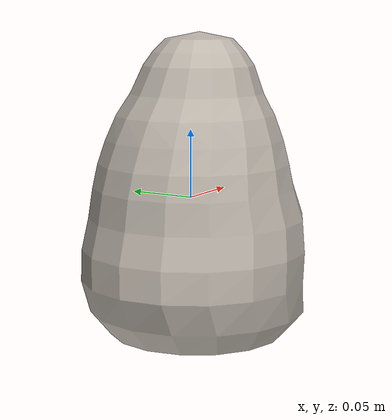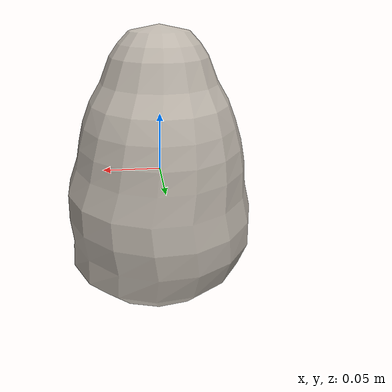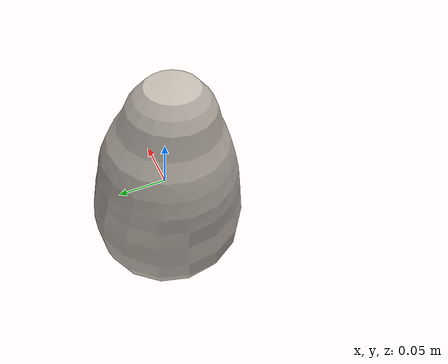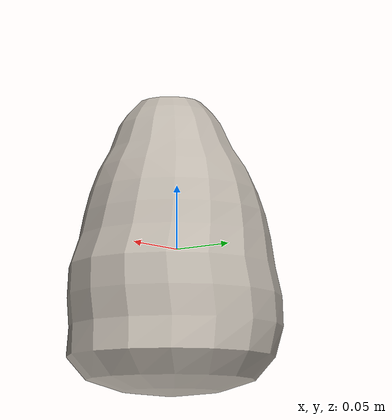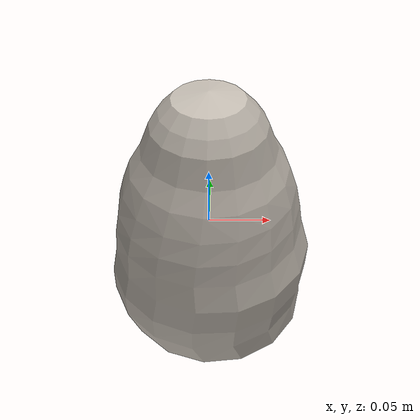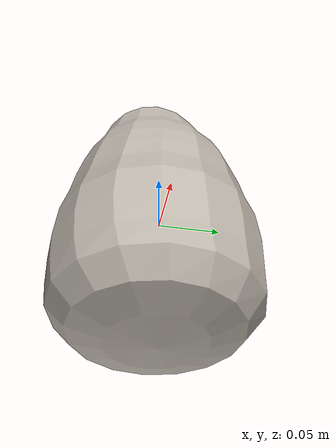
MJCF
<mujoco model="Lettuce_18">
  <compiler autolimits="true" boundmass="0.01" angle="radian"/>
  <default>
    <default class="/">
      <default class="__VISUAL_MJT__">
        <geom contype="0" conaffinity="0" group="0"/>
      </default>
      <default class="__STRUCTURAL_MJT__">
        <geom contype="8" conaffinity="15" group="4" friction="0.90000000000000002 0.90000000000000002 0.001" solref="0.025000000000000001 1" solimp="0.998 0.998 0.001"/>
      </default>
      <default class="__DYNAMIC_MJT__">
        <geom contype="1" conaffinity="15" group="4" friction="0.90000000000000002 0.90000000000000002 0.001" solref="0.025000000000000001 1" solimp="0.998 0.998 0.001"/>
      </default>
    </default>
  </default>
  <asset>
    <texture name="Lettuce2_Mat" type="2d" file="Lettuce2_AlbedoTransparency.png"/>
    <material name="material_Lettuce2_Mat" class="/" texture="Lettuce2_Mat" specular="0.5" shininess="0.5" rgba="1 1 1 1"/>
    <mesh name="Lettuce_18_lettuce_b8" class="/" file="Lettuce_18_lettuce_b8/Lettuce_18_lettuce_b8.obj" scale="1 1 1"/>
  </asset>
  <worldbody>
    <body name="Lettuce_18">
      <joint name="Lettuce_18_free" class="/" type="free" pos="0 0 0" axis="0 0 1" stiffness="0" range="0 0" armature="0" damping="0.10000000000000001" frictionloss="0"/>
      <body name="Lettuce_18_lettuce_b8" pos="0.0016900000000000001 -0.0030200000000000001 0.0039699999999999996" quat="1 0 0 0">
        <geom name="Lettuce_18_lettuce_b8" class="__VISUAL_MJT__" type="mesh" material="material_Lettuce2_Mat" shellinertia="true" mesh="Lettuce_18_lettuce_b8"/>
        <geom name="Lettuce_18_PrimitiveCollider_0" class="__DYNAMIC_MJT__" type="capsule" size="0.083375699818134308 0.0090973302721977234" rgba="0 1 0 1" pos="0.0016947302501648664 0.0030157016590237617 -0.035173173993825912" quat="0.99999999999891198 1.4751396607739272e-06 0 0"/>
        <geom name="Lettuce_18_PrimitiveCollider_1" class="__DYNAMIC_MJT__" type="capsule" size="0.072181239724159241 1.0000000000000001e-05" rgba="0 1 0 1" pos="0.0005990220233798027 0.0012997905723750591 0.019578099250793457" quat="0.99999999999891198 1.4751396607739272e-06 0 0"/>
        <geom name="Lettuce_18_PrimitiveCollider_2" class="__DYNAMIC_MJT__" type="capsule" size="0.045651920139789581 1.0000000000000001e-05" rgba="0 1 0 1" pos="-0.00053871795535087585 -0.0024444428272545338 0.074050739407539368" quat="0.99999999999891198 1.4751396607739272e-06 0 0"/>
      </body>
    </body>
  </worldbody>
</mujoco>
